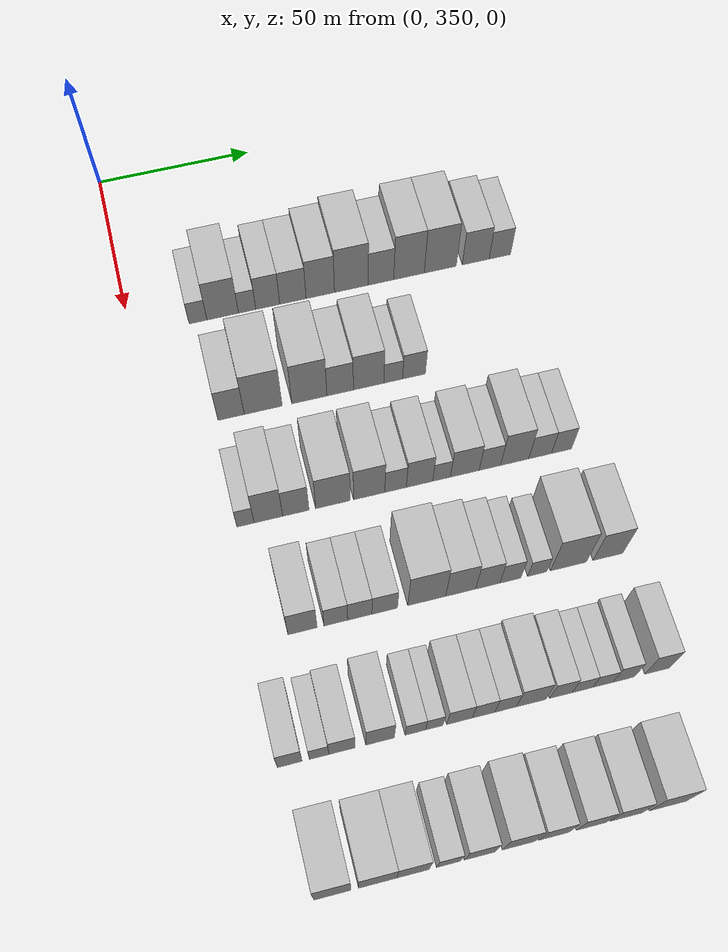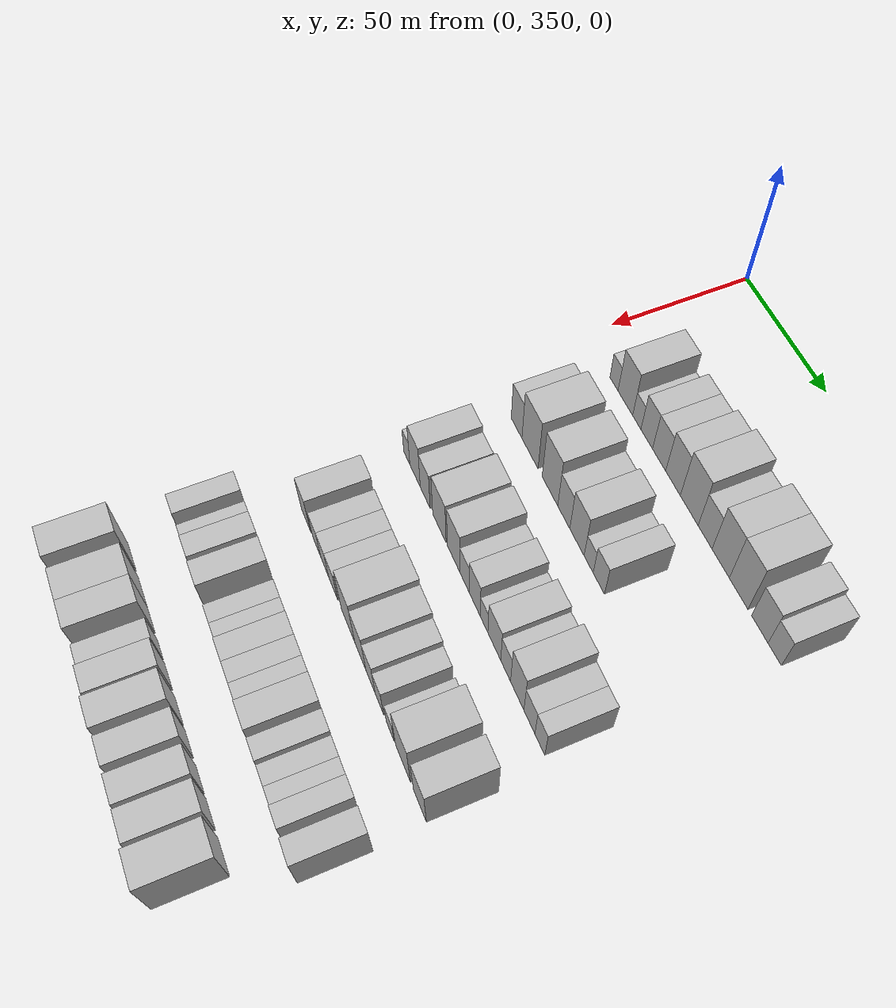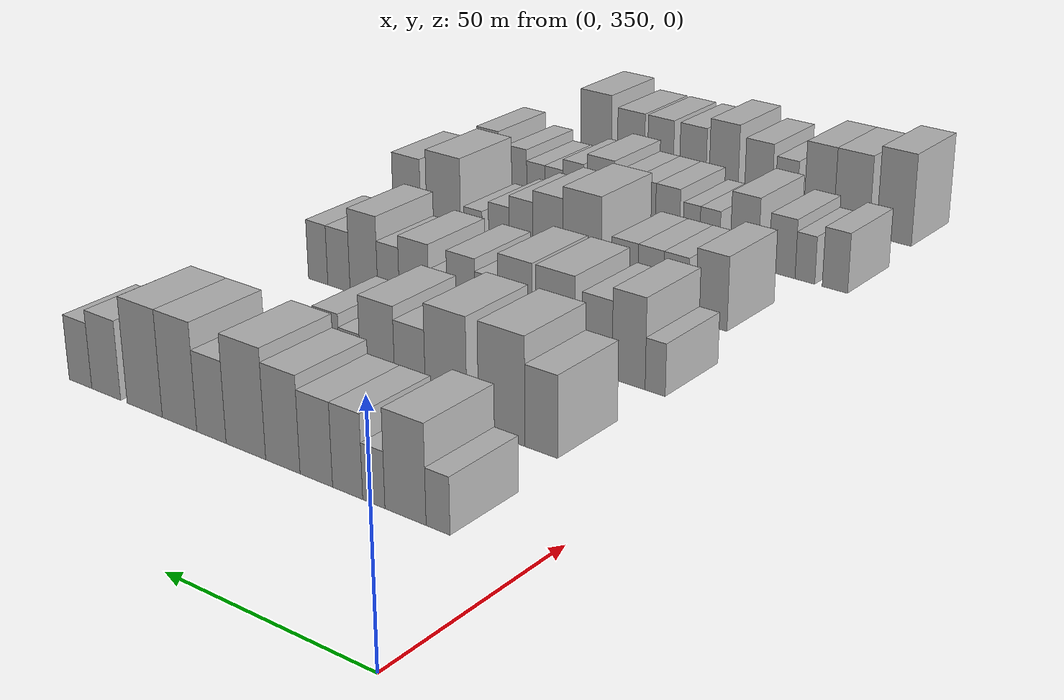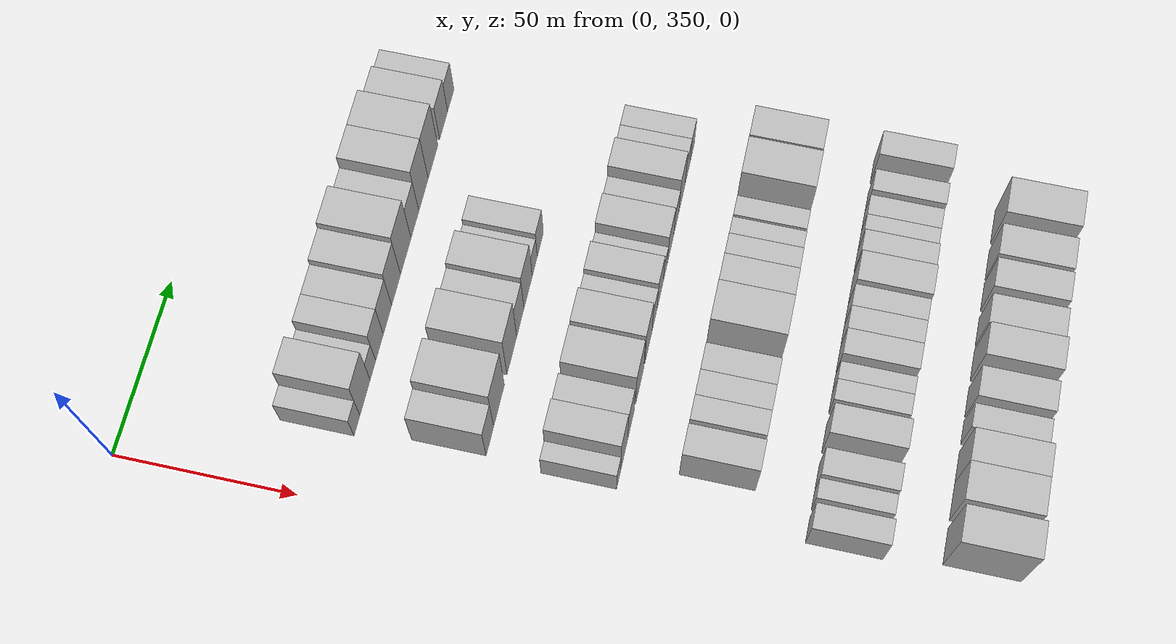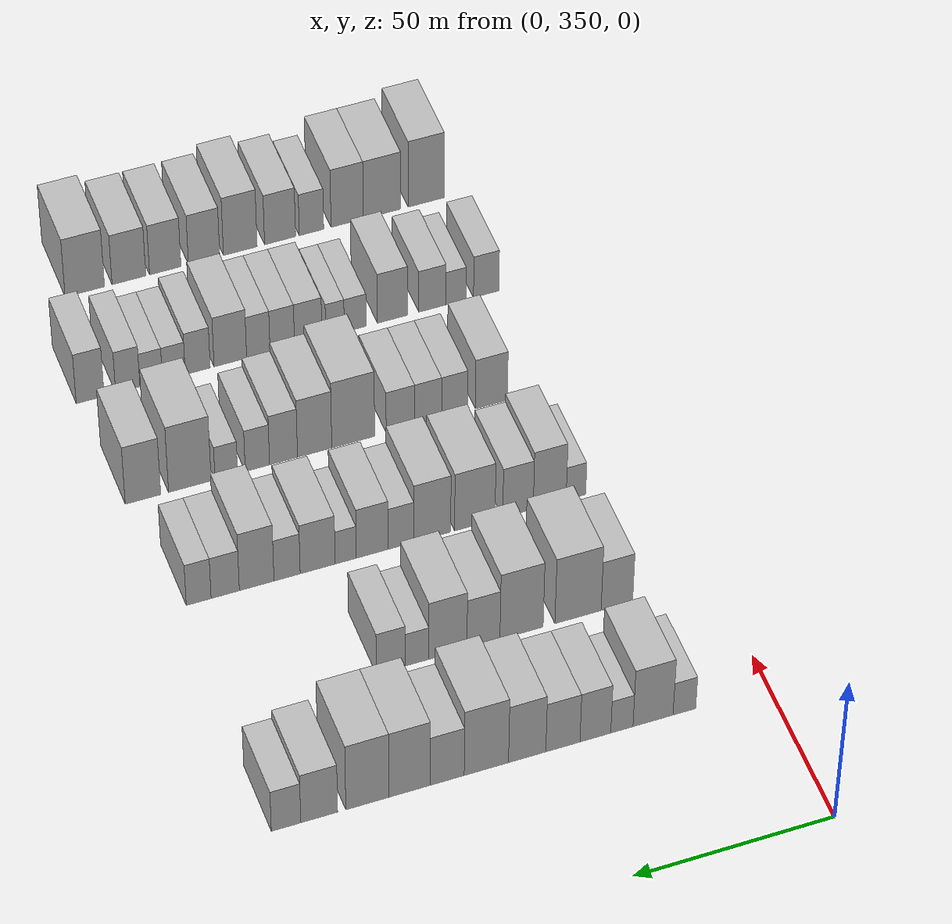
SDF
<sdf version="1.6">
 <world name="default">
  <model name="building_110">
   <static>1</static>
   <pose>50.0000 371.4552 0 0.000000 0.000000 0.000000</pose>
   <link name="link">
    <pose>0 0 6.00 0 0 0</pose>
    <collision name="collision"><geometry><box><size>20.0000 5.7170 12.0000</size></box></geometry></collision>
    <visual name="visual">
     <cast_shadows>0</cast_shadows>
     <geometry><box><size>20.0000 5.7170 12.0000</size></box></geometry>
     <material>
      <script>
       <uri>model://HANNAS_wall/materials/scripts</uri>
       <uri>model://HANNAS_wall/materials/textures</uri>
       <name>vrc/HANNAS_wall</name>
      </script>
     </material>
    </visual>
   </link>
  </model>
  <model name="building_111">
   <static>1</static>
   <pose>50.0000 379.3548 0 0.000000 0.000000 0.000000</pose>
   <link name="link">
    <pose>0 0 10.50 0 0 0</pose>
    <collision name="collision"><geometry><box><size>20.0000 10.0823 21.0000</size></box></geometry></collision>
    <visual name="visual">
     <cast_shadows>0</cast_shadows>
     <geometry><box><size>20.0000 10.0823 21.0000</size></box></geometry>
     <material>
      <script>
       <uri>model://HANNAS_wall/materials/scripts</uri>
       <uri>model://HANNAS_wall/materials/textures</uri>
       <name>vrc/HANNAS_wall</name>
      </script>
     </material>
    </visual>
   </link>
  </model>
  <model name="building_112">
   <static>1</static>
   <pose>50.0000 387.1852 0 0.000000 0.000000 0.000000</pose>
   <link name="link">
    <pose>0 0 6.00 0 0 0</pose>
    <collision name="collision"><geometry><box><size>20.0000 5.5784 12.0000</size></box></geometry></collision>
    <visual name="visual">
     <cast_shadows>0</cast_shadows>
     <geometry><box><size>20.0000 5.5784 12.0000</size></box></geometry>
     <material>
      <script>
       <uri>model://HANNAS_wall/materials/scripts</uri>
       <uri>model://HANNAS_wall/materials/textures</uri>
       <name>vrc/HANNAS_wall</name>
      </script>
     </material>
    </visual>
   </link>
  </model>
  <model name="building_113">
   <static>1</static>
   <pose>50.0000 393.8308 0 0.000000 0.000000 0.000000</pose>
   <link name="link">
    <pose>0 0 9.00 0 0 0</pose>
    <collision name="collision"><geometry><box><size>20.0000 7.7129 18.0000</size></box></geometry></collision>
    <visual name="visual">
     <cast_shadows>0</cast_shadows>
     <geometry><box><size>20.0000 7.7129 18.0000</size></box></geometry>
     <material>
      <script>
       <uri>model://HANNAS_wall/materials/scripts</uri>
       <uri>model://HANNAS_wall/materials/textures</uri>
       <name>vrc/HANNAS_wall</name>
      </script>
     </material>
    </visual>
   </link>
  </model>
  <model name="building_114">
   <static>1</static>
   <pose>50.0000 401.9539 0 0.000000 0.000000 0.000000</pose>
   <link name="link">
    <pose>0 0 9.00 0 0 0</pose>
    <collision name="collision"><geometry><box><size>20.0000 8.5334 18.0000</size></box></geometry></collision>
    <visual name="visual">
     <cast_shadows>0</cast_shadows>
     <geometry><box><size>20.0000 8.5334 18.0000</size></box></geometry>
     <material>
      <script>
       <uri>model://HANNAS_wall/materials/scripts</uri>
       <uri>model://HANNAS_wall/materials/textures</uri>
       <name>vrc/HANNAS_wall</name>
      </script>
     </material>
    </visual>
   </link>
  </model>
  <model name="building_115">
   <static>1</static>
   <pose>50.0000 410.8583 0 0.000000 0.000000 0.000000</pose>
   <link name="link">
    <pose>0 0 10.50 0 0 0</pose>
    <collision name="collision"><geometry><box><size>20.0000 9.2754 21.0000</size></box></geometry></collision>
    <visual name="visual">
     <cast_shadows>0</cast_shadows>
     <geometry><box><size>20.0000 9.2754 21.0000</size></box></geometry>
     <material>
      <script>
       <uri>model://HANNAS_wall/materials/scripts</uri>
       <uri>model://HANNAS_wall/materials/textures</uri>
       <name>vrc/HANNAS_wall</name>
      </script>
     </material>
    </visual>
   </link>
  </model>
  <model name="building_116">
   <static>1</static>
   <pose>50.0000 420.9840 0 0.000000 0.000000 0.000000</pose>
   <link name="link">
    <pose>0 0 12.00 0 0 0</pose>
    <collision name="collision"><geometry><box><size>20.0000 10.9758 24.0000</size></box></geometry></collision>
    <visual name="visual">
     <cast_shadows>0</cast_shadows>
     <geometry><box><size>20.0000 10.9758 24.0000</size></box></geometry>
     <material>
      <script>
       <uri>model://HANNAS_wall/materials/scripts</uri>
       <uri>model://HANNAS_wall/materials/textures</uri>
       <name>vrc/HANNAS_wall</name>
      </script>
     </material>
    </visual>
   </link>
  </model>
  <model name="building_117">
   <static>1</static>
   <pose>50.0000 430.6676 0 0.000000 0.000000 0.000000</pose>
   <link name="link">
    <pose>0 0 9.00 0 0 0</pose>
    <collision name="collision"><geometry><box><size>20.0000 8.3914 18.0000</size></box></geometry></collision>
    <visual name="visual">
     <cast_shadows>0</cast_shadows>
     <geometry><box><size>20.0000 8.3914 18.0000</size></box></geometry>
     <material>
      <script>
       <uri>model://HANNAS_wall/materials/scripts</uri>
       <uri>model://HANNAS_wall/materials/textures</uri>
       <name>vrc/HANNAS_wall</name>
      </script>
     </material>
    </visual>
   </link>
  </model>
  <model name="building_118">
   <static>1</static>
   <pose>50.0000 439.9173 0 0.000000 0.000000 0.000000</pose>
   <link name="link">
    <pose>0 0 12.00 0 0 0</pose>
    <collision name="collision"><geometry><box><size>20.0000 10.1082 24.0000</size></box></geometry></collision>
    <visual name="visual">
     <cast_shadows>0</cast_shadows>
     <geometry><box><size>20.0000 10.1082 24.0000</size></box></geometry>
     <material>
      <script>
       <uri>model://HANNAS_wall/materials/scripts</uri>
       <uri>model://HANNAS_wall/materials/textures</uri>
       <name>vrc/HANNAS_wall</name>
      </script>
     </material>
    </visual>
   </link>
  </model>
  <model name="building_119">
   <static>1</static>
   <pose>50.0000 450.2829 0 0.000000 0.000000 0.000000</pose>
   <link name="link">
    <pose>0 0 12.00 0 0 0</pose>
    <collision name="collision"><geometry><box><size>20.0000 10.6229 24.0000</size></box></geometry></collision>
    <visual name="visual">
     <cast_shadows>0</cast_shadows>
     <geometry><box><size>20.0000 10.6229 24.0000</size></box></geometry>
     <material>
      <script>
       <uri>model://HANNAS_wall/materials/scripts</uri>
       <uri>model://HANNAS_wall/materials/textures</uri>
       <name>vrc/HANNAS_wall</name>
      </script>
     </material>
    </visual>
   </link>
  </model>
  <model name="building_120">
   <static>1</static>
   <pose>50.0000 462.0882 0 0.000000 0.000000 0.000000</pose>
   <link name="link">
    <pose>0 0 9.00 0 0 0</pose>
    <collision name="collision"><geometry><box><size>20.0000 8.9876 18.0000</size></box></geometry></collision>
    <visual name="visual">
     <cast_shadows>0</cast_shadows>
     <geometry><box><size>20.0000 8.9876 18.0000</size></box></geometry>
     <material>
      <script>
       <uri>model://HANNAS_wall/materials/scripts</uri>
       <uri>model://HANNAS_wall/materials/textures</uri>
       <name>vrc/HANNAS_wall</name>
      </script>
     </material>
    </visual>
   </link>
  </model>
  <model name="building_121">
   <static>1</static>
   <pose>50.0000 470.1704 0 0.000000 0.000000 0.000000</pose>
   <link name="link">
    <pose>0 0 7.50 0 0 0</pose>
    <collision name="collision"><geometry><box><size>20.0000 7.1768 15.0000</size></box></geometry></collision>
    <visual name="visual">
     <cast_shadows>0</cast_shadows>
     <geometry><box><size>20.0000 7.1768 15.0000</size></box></geometry>
     <material>
      <script>
       <uri>model://HANNAS_wall/materials/scripts</uri>
       <uri>model://HANNAS_wall/materials/textures</uri>
       <name>vrc/HANNAS_wall</name>
      </script>
     </material>
    </visual>
   </link>
  </model>
  <model name="building_242">
   <static>1</static>
   <pose>85.0000 374.8270 0 0.000000 0.000000 0.000000</pose>
   <link name="link">
    <pose>0 0 9.00 0 0 0</pose>
    <collision name="collision"><geometry><box><size>20.0000 8.0804 18.0000</size></box></geometry></collision>
    <visual name="visual">
     <cast_shadows>0</cast_shadows>
     <geometry><box><size>20.0000 8.0804 18.0000</size></box></geometry>
     <material>
      <script>
       <uri>model://HANNAS_wall/materials/scripts</uri>
       <uri>model://HANNAS_wall/materials/textures</uri>
       <name>vrc/HANNAS_wall</name>
      </script>
     </material>
    </visual>
   </link>
  </model>
  <model name="building_243">
   <static>1</static>
   <pose>85.0000 384.7584 0 0.000000 0.000000 0.000000</pose>
   <link name="link">
    <pose>0 0 12.00 0 0 0</pose>
    <collision name="collision"><geometry><box><size>20.0000 11.7825 24.0000</size></box></geometry></collision>
    <visual name="visual">
     <cast_shadows>0</cast_shadows>
     <geometry><box><size>20.0000 11.7825 24.0000</size></box></geometry>
     <material>
      <script>
       <uri>model://HANNAS_wall/materials/scripts</uri>
       <uri>model://HANNAS_wall/materials/textures</uri>
       <name>vrc/HANNAS_wall</name>
      </script>
     </material>
    </visual>
   </link>
  </model>
  <model name="building_244">
   <static>1</static>
   <pose>85.0000 399.1333 0 0.000000 0.000000 0.000000</pose>
   <link name="link">
    <pose>0 0 12.00 0 0 0</pose>
    <collision name="collision"><geometry><box><size>20.0000 10.9673 24.0000</size></box></geometry></collision>
    <visual name="visual">
     <cast_shadows>0</cast_shadows>
     <geometry><box><size>20.0000 10.9673 24.0000</size></box></geometry>
     <material>
      <script>
       <uri>model://HANNAS_wall/materials/scripts</uri>
       <uri>model://HANNAS_wall/materials/textures</uri>
       <name>vrc/HANNAS_wall</name>
      </script>
     </material>
    </visual>
   </link>
  </model>
  <model name="building_245">
   <static>1</static>
   <pose>85.0000 408.7823 0 0.000000 0.000000 0.000000</pose>
   <link name="link">
    <pose>0 0 9.00 0 0 0</pose>
    <collision name="collision"><geometry><box><size>20.0000 8.3306 18.0000</size></box></geometry></collision>
    <visual name="visual">
     <cast_shadows>0</cast_shadows>
     <geometry><box><size>20.0000 8.3306 18.0000</size></box></geometry>
     <material>
      <script>
       <uri>model://HANNAS_wall/materials/scripts</uri>
       <uri>model://HANNAS_wall/materials/textures</uri>
       <name>vrc/HANNAS_wall</name>
      </script>
     </material>
    </visual>
   </link>
  </model>
  <model name="building_246">
   <static>1</static>
   <pose>85.0000 417.7440 0 0.000000 0.000000 0.000000</pose>
   <link name="link">
    <pose>0 0 10.50 0 0 0</pose>
    <collision name="collision"><geometry><box><size>20.0000 9.5926 21.0000</size></box></geometry></collision>
    <visual name="visual">
     <cast_shadows>0</cast_shadows>
     <geometry><box><size>20.0000 9.5926 21.0000</size></box></geometry>
     <material>
      <script>
       <uri>model://HANNAS_wall/materials/scripts</uri>
       <uri>model://HANNAS_wall/materials/textures</uri>
       <name>vrc/HANNAS_wall</name>
      </script>
     </material>
    </visual>
   </link>
  </model>
  <model name="building_247">
   <static>1</static>
   <pose>85.0000 425.5136 0 0.000000 0.000000 0.000000</pose>
   <link name="link">
    <pose>0 0 6.00 0 0 0</pose>
    <collision name="collision"><geometry><box><size>20.0000 5.9467 12.0000</size></box></geometry></collision>
    <visual name="visual">
     <cast_shadows>0</cast_shadows>
     <geometry><box><size>20.0000 5.9467 12.0000</size></box></geometry>
     <material>
      <script>
       <uri>model://HANNAS_wall/materials/scripts</uri>
       <uri>model://HANNAS_wall/materials/textures</uri>
       <name>vrc/HANNAS_wall</name>
      </script>
     </material>
    </visual>
   </link>
  </model>
  <model name="building_248">
   <static>1</static>
   <pose>85.0000 432.1170 0 0.000000 0.000000 0.000000</pose>
   <link name="link">
    <pose>0 0 7.50 0 0 0</pose>
    <collision name="collision"><geometry><box><size>20.0000 7.2601 15.0000</size></box></geometry></collision>
    <visual name="visual">
     <cast_shadows>0</cast_shadows>
     <geometry><box><size>20.0000 7.2601 15.0000</size></box></geometry>
     <material>
      <script>
       <uri>model://HANNAS_wall/materials/scripts</uri>
       <uri>model://HANNAS_wall/materials/textures</uri>
       <name>vrc/HANNAS_wall</name>
      </script>
     </material>
    </visual>
   </link>
  </model>
  <model name="building_348">
   <static>1</static>
   <pose>120.0000 371.8962 0 0.000000 0.000000 0.000000</pose>
   <link name="link">
    <pose>0 0 6.00 0 0 0</pose>
    <collision name="collision"><geometry><box><size>20.0000 5.0965 12.0000</size></box></geometry></collision>
    <visual name="visual">
     <cast_shadows>0</cast_shadows>
     <geometry><box><size>20.0000 5.0965 12.0000</size></box></geometry>
     <material>
      <script>
       <uri>model://HANNAS_wall/materials/scripts</uri>
       <uri>model://HANNAS_wall/materials/textures</uri>
       <name>vrc/HANNAS_wall</name>
      </script>
     </material>
    </visual>
   </link>
  </model>
  <model name="building_349">
   <static>1</static>
   <pose>120.0000 378.7109 0 0.000000 0.000000 0.000000</pose>
   <link name="link">
    <pose>0 0 10.50 0 0 0</pose>
    <collision name="collision"><geometry><box><size>20.0000 8.5330 21.0000</size></box></geometry></collision>
    <visual name="visual">
     <cast_shadows>0</cast_shadows>
     <geometry><box><size>20.0000 8.5330 21.0000</size></box></geometry>
     <material>
      <script>
       <uri>model://HANNAS_wall/materials/scripts</uri>
       <uri>model://HANNAS_wall/materials/textures</uri>
       <name>vrc/HANNAS_wall</name>
      </script>
     </material>
    </visual>
   </link>
  </model>
  <model name="building_350">
   <static>1</static>
   <pose>120.0000 386.9313 0 0.000000 0.000000 0.000000</pose>
   <link name="link">
    <pose>0 0 9.00 0 0 0</pose>
    <collision name="collision"><geometry><box><size>20.0000 7.9079 18.0000</size></box></geometry></collision>
    <visual name="visual">
     <cast_shadows>0</cast_shadows>
     <geometry><box><size>20.0000 7.9079 18.0000</size></box></geometry>
     <material>
      <script>
       <uri>model://HANNAS_wall/materials/scripts</uri>
       <uri>model://HANNAS_wall/materials/textures</uri>
       <name>vrc/HANNAS_wall</name>
      </script>
     </material>
    </visual>
   </link>
  </model>
  <model name="building_351">
   <static>1</static>
   <pose>120.0000 398.0924 0 0.000000 0.000000 0.000000</pose>
   <link name="link">
    <pose>0 0 10.50 0 0 0</pose>
    <collision name="collision"><geometry><box><size>20.0000 10.4142 21.0000</size></box></geometry></collision>
    <visual name="visual">
     <cast_shadows>0</cast_shadows>
     <geometry><box><size>20.0000 10.4142 21.0000</size></box></geometry>
     <material>
      <script>
       <uri>model://HANNAS_wall/materials/scripts</uri>
       <uri>model://HANNAS_wall/materials/textures</uri>
       <name>vrc/HANNAS_wall</name>
      </script>
     </material>
    </visual>
   </link>
  </model>
  <model name="building_352">
   <static>1</static>
   <pose>120.0000 409.0342 0 0.000000 0.000000 0.000000</pose>
   <link name="link">
    <pose>0 0 10.50 0 0 0</pose>
    <collision name="collision"><geometry><box><size>20.0000 9.4694 21.0000</size></box></geometry></collision>
    <visual name="visual">
     <cast_shadows>0</cast_shadows>
     <geometry><box><size>20.0000 9.4694 21.0000</size></box></geometry>
     <material>
      <script>
       <uri>model://HANNAS_wall/materials/scripts</uri>
       <uri>model://HANNAS_wall/materials/textures</uri>
       <name>vrc/HANNAS_wall</name>
      </script>
     </material>
    </visual>
   </link>
  </model>
  <model name="building_353">
   <static>1</static>
   <pose>120.0000 417.0589 0 0.000000 0.000000 0.000000</pose>
   <link name="link">
    <pose>0 0 7.50 0 0 0</pose>
    <collision name="collision"><geometry><box><size>20.0000 6.5801 15.0000</size></box></geometry></collision>
    <visual name="visual">
     <cast_shadows>0</cast_shadows>
     <geometry><box><size>20.0000 6.5801 15.0000</size></box></geometry>
     <material>
      <script>
       <uri>model://HANNAS_wall/materials/scripts</uri>
       <uri>model://HANNAS_wall/materials/textures</uri>
       <name>vrc/HANNAS_wall</name>
      </script>
     </material>
    </visual>
   </link>
  </model>
  <model name="building_354">
   <static>1</static>
   <pose>120.0000 424.4095 0 0.000000 0.000000 0.000000</pose>
   <link name="link">
    <pose>0 0 9.00 0 0 0</pose>
    <collision name="collision"><geometry><box><size>20.0000 8.1209 18.0000</size></box></geometry></collision>
    <visual name="visual">
     <cast_shadows>0</cast_shadows>
     <geometry><box><size>20.0000 8.1209 18.0000</size></box></geometry>
     <material>
      <script>
       <uri>model://HANNAS_wall/materials/scripts</uri>
       <uri>model://HANNAS_wall/materials/textures</uri>
       <name>vrc/HANNAS_wall</name>
      </script>
     </material>
    </visual>
   </link>
  </model>
  <model name="building_355">
   <static>1</static>
   <pose>120.0000 431.1703 0 0.000000 0.000000 0.000000</pose>
   <link name="link">
    <pose>0 0 6.00 0 0 0</pose>
    <collision name="collision"><geometry><box><size>20.0000 5.4007 12.0000</size></box></geometry></collision>
    <visual name="visual">
     <cast_shadows>0</cast_shadows>
     <geometry><box><size>20.0000 5.4007 12.0000</size></box></geometry>
     <material>
      <script>
       <uri>model://HANNAS_wall/materials/scripts</uri>
       <uri>model://HANNAS_wall/materials/textures</uri>
       <name>vrc/HANNAS_wall</name>
      </script>
     </material>
    </visual>
   </link>
  </model>
  <model name="building_356">
   <static>1</static>
   <pose>120.0000 438.3139 0 0.000000 0.000000 0.000000</pose>
   <link name="link">
    <pose>0 0 9.00 0 0 0</pose>
    <collision name="collision"><geometry><box><size>20.0000 8.8864 18.0000</size></box></geometry></collision>
    <visual name="visual">
     <cast_shadows>0</cast_shadows>
     <geometry><box><size>20.0000 8.8864 18.0000</size></box></geometry>
     <material>
      <script>
       <uri>model://HANNAS_wall/materials/scripts</uri>
       <uri>model://HANNAS_wall/materials/textures</uri>
       <name>vrc/HANNAS_wall</name>
      </script>
     </material>
    </visual>
   </link>
  </model>
  <model name="building_357">
   <static>1</static>
   <pose>120.0000 446.0766 0 0.000000 0.000000 0.000000</pose>
   <link name="link">
    <pose>0 0 7.50 0 0 0</pose>
    <collision name="collision"><geometry><box><size>20.0000 6.6391 15.0000</size></box></geometry></collision>
    <visual name="visual">
     <cast_shadows>0</cast_shadows>
     <geometry><box><size>20.0000 6.6391 15.0000</size></box></geometry>
     <material>
      <script>
       <uri>model://HANNAS_wall/materials/scripts</uri>
       <uri>model://HANNAS_wall/materials/textures</uri>
       <name>vrc/HANNAS_wall</name>
      </script>
     </material>
    </visual>
   </link>
  </model>
  <model name="building_358">
   <static>1</static>
   <pose>120.0000 453.7754 0 0.000000 0.000000 0.000000</pose>
   <link name="link">
    <pose>0 0 10.50 0 0 0</pose>
    <collision name="collision"><geometry><box><size>20.0000 8.7584 21.0000</size></box></geometry></collision>
    <visual name="visual">
     <cast_shadows>0</cast_shadows>
     <geometry><box><size>20.0000 8.7584 21.0000</size></box></geometry>
     <material>
      <script>
       <uri>model://HANNAS_wall/materials/scripts</uri>
       <uri>model://HANNAS_wall/materials/textures</uri>
       <name>vrc/HANNAS_wall</name>
      </script>
     </material>
    </visual>
   </link>
  </model>
  <model name="building_359">
   <static>1</static>
   <pose>120.0000 461.7132 0 0.000000 0.000000 0.000000</pose>
   <link name="link">
    <pose>0 0 7.50 0 0 0</pose>
    <collision name="collision"><geometry><box><size>20.0000 7.1172 15.0000</size></box></geometry></collision>
    <visual name="visual">
     <cast_shadows>0</cast_shadows>
     <geometry><box><size>20.0000 7.1172 15.0000</size></box></geometry>
     <material>
      <script>
       <uri>model://HANNAS_wall/materials/scripts</uri>
       <uri>model://HANNAS_wall/materials/textures</uri>
       <name>vrc/HANNAS_wall</name>
      </script>
     </material>
    </visual>
   </link>
  </model>
  <model name="building_360">
   <static>1</static>
   <pose>120.0000 468.3974 0 0.000000 0.000000 0.000000</pose>
   <link name="link">
    <pose>0 0 7.50 0 0 0</pose>
    <collision name="collision"><geometry><box><size>20.0000 6.2514 15.0000</size></box></geometry></collision>
    <visual name="visual">
     <cast_shadows>0</cast_shadows>
     <geometry><box><size>20.0000 6.2514 15.0000</size></box></geometry>
     <material>
      <script>
       <uri>model://HANNAS_wall/materials/scripts</uri>
       <uri>model://HANNAS_wall/materials/textures</uri>
       <name>vrc/HANNAS_wall</name>
      </script>
     </material>
    </visual>
   </link>
  </model>
  <model name="building_470">
   <static>1</static>
   <pose>155.0000 380.8708 0 0.000000 0.000000 0.000000</pose>
   <link name="link">
    <pose>0 0 9.00 0 0 0</pose>
    <collision name="collision"><geometry><box><size>20.0000 8.4128 18.0000</size></box></geometry></collision>
    <visual name="visual">
     <cast_shadows>0</cast_shadows>
     <geometry><box><size>20.0000 8.4128 18.0000</size></box></geometry>
     <material>
      <script>
       <uri>model://HANNAS_wall/materials/scripts</uri>
       <uri>model://HANNAS_wall/materials/textures</uri>
       <name>vrc/HANNAS_wall</name>
      </script>
     </material>
    </visual>
   </link>
  </model>
  <model name="building_471">
   <static>1</static>
   <pose>155.0000 390.5074 0 0.000000 0.000000 0.000000</pose>
   <link name="link">
    <pose>0 0 7.50 0 0 0</pose>
    <collision name="collision"><geometry><box><size>20.0000 6.8602 15.0000</size></box></geometry></collision>
    <visual name="visual">
     <cast_shadows>0</cast_shadows>
     <geometry><box><size>20.0000 6.8602 15.0000</size></box></geometry>
     <material>
      <script>
       <uri>model://HANNAS_wall/materials/scripts</uri>
       <uri>model://HANNAS_wall/materials/textures</uri>
       <name>vrc/HANNAS_wall</name>
      </script>
     </material>
    </visual>
   </link>
  </model>
  <model name="building_472">
   <static>1</static>
   <pose>155.0000 397.4467 0 0.000000 0.000000 0.000000</pose>
   <link name="link">
    <pose>0 0 7.50 0 0 0</pose>
    <collision name="collision"><geometry><box><size>20.0000 7.0185 15.0000</size></box></geometry></collision>
    <visual name="visual">
     <cast_shadows>0</cast_shadows>
     <geometry><box><size>20.0000 7.0185 15.0000</size></box></geometry>
     <material>
      <script>
       <uri>model://HANNAS_wall/materials/scripts</uri>
       <uri>model://HANNAS_wall/materials/textures</uri>
       <name>vrc/HANNAS_wall</name>
      </script>
     </material>
    </visual>
   </link>
  </model>
  <model name="building_473">
   <static>1</static>
   <pose>155.0000 404.6914 0 0.000000 0.000000 0.000000</pose>
   <link name="link">
    <pose>0 0 7.50 0 0 0</pose>
    <collision name="collision"><geometry><box><size>20.0000 7.4708 15.0000</size></box></geometry></collision>
    <visual name="visual">
     <cast_shadows>0</cast_shadows>
     <geometry><box><size>20.0000 7.4708 15.0000</size></box></geometry>
     <material>
      <script>
       <uri>model://HANNAS_wall/materials/scripts</uri>
       <uri>model://HANNAS_wall/materials/textures</uri>
       <name>vrc/HANNAS_wall</name>
      </script>
     </material>
    </visual>
   </link>
  </model>
  <model name="building_474">
   <static>1</static>
   <pose>155.0000 417.0039 0 0.000000 0.000000 0.000000</pose>
   <link name="link">
    <pose>0 0 12.00 0 0 0</pose>
    <collision name="collision"><geometry><box><size>20.0000 11.1544 24.0000</size></box></geometry></collision>
    <visual name="visual">
     <cast_shadows>0</cast_shadows>
     <geometry><box><size>20.0000 11.1544 24.0000</size></box></geometry>
     <material>
      <script>
       <uri>model://HANNAS_wall/materials/scripts</uri>
       <uri>model://HANNAS_wall/materials/textures</uri>
       <name>vrc/HANNAS_wall</name>
      </script>
     </material>
    </visual>
   </link>
  </model>
  <model name="building_475">
   <static>1</static>
   <pose>155.0000 427.0225 0 0.000000 0.000000 0.000000</pose>
   <link name="link">
    <pose>0 0 10.50 0 0 0</pose>
    <collision name="collision"><geometry><box><size>20.0000 8.8828 21.0000</size></box></geometry></collision>
    <visual name="visual">
     <cast_shadows>0</cast_shadows>
     <geometry><box><size>20.0000 8.8828 21.0000</size></box></geometry>
     <material>
      <script>
       <uri>model://HANNAS_wall/materials/scripts</uri>
       <uri>model://HANNAS_wall/materials/textures</uri>
       <name>vrc/HANNAS_wall</name>
      </script>
     </material>
    </visual>
   </link>
  </model>
  <model name="building_476">
   <static>1</static>
   <pose>155.0000 435.0719 0 0.000000 0.000000 0.000000</pose>
   <link name="link">
    <pose>0 0 9.00 0 0 0</pose>
    <collision name="collision"><geometry><box><size>20.0000 7.2161 18.0000</size></box></geometry></collision>
    <visual name="visual">
     <cast_shadows>0</cast_shadows>
     <geometry><box><size>20.0000 7.2161 18.0000</size></box></geometry>
     <material>
      <script>
       <uri>model://HANNAS_wall/materials/scripts</uri>
       <uri>model://HANNAS_wall/materials/textures</uri>
       <name>vrc/HANNAS_wall</name>
      </script>
     </material>
    </visual>
   </link>
  </model>
  <model name="building_477">
   <static>1</static>
   <pose>155.0000 441.8192 0 0.000000 0.000000 0.000000</pose>
   <link name="link">
    <pose>0 0 7.50 0 0 0</pose>
    <collision name="collision"><geometry><box><size>20.0000 6.2783 15.0000</size></box></geometry></collision>
    <visual name="visual">
     <cast_shadows>0</cast_shadows>
     <geometry><box><size>20.0000 6.2783 15.0000</size></box></geometry>
     <material>
      <script>
       <uri>model://HANNAS_wall/materials/scripts</uri>
       <uri>model://HANNAS_wall/materials/textures</uri>
       <name>vrc/HANNAS_wall</name>
      </script>
     </material>
    </visual>
   </link>
  </model>
  <model name="building_478">
   <static>1</static>
   <pose>155.0000 449.8513 0 0.000000 0.000000 0.000000</pose>
   <link name="link">
    <pose>0 0 6.00 0 0 0</pose>
    <collision name="collision"><geometry><box><size>20.0000 5.7859 12.0000</size></box></geometry></collision>
    <visual name="visual">
     <cast_shadows>0</cast_shadows>
     <geometry><box><size>20.0000 5.7859 12.0000</size></box></geometry>
     <material>
      <script>
       <uri>model://HANNAS_wall/materials/scripts</uri>
       <uri>model://HANNAS_wall/materials/textures</uri>
       <name>vrc/HANNAS_wall</name>
      </script>
     </material>
    </visual>
   </link>
  </model>
  <model name="building_479">
   <static>1</static>
   <pose>155.0000 459.1944 0 0.000000 0.000000 0.000000</pose>
   <link name="link">
    <pose>0 0 12.00 0 0 0</pose>
    <collision name="collision"><geometry><box><size>20.0000 10.9003 24.0000</size></box></geometry></collision>
    <visual name="visual">
     <cast_shadows>0</cast_shadows>
     <geometry><box><size>20.0000 10.9003 24.0000</size></box></geometry>
     <material>
      <script>
       <uri>model://HANNAS_wall/materials/scripts</uri>
       <uri>model://HANNAS_wall/materials/textures</uri>
       <name>vrc/HANNAS_wall</name>
      </script>
     </material>
    </visual>
   </link>
  </model>
  <model name="building_480">
   <static>1</static>
   <pose>155.0000 471.1728 0 0.000000 0.000000 0.000000</pose>
   <link name="link">
    <pose>0 0 10.50 0 0 0</pose>
    <collision name="collision"><geometry><box><size>20.0000 9.0564 21.0000</size></box></geometry></collision>
    <visual name="visual">
     <cast_shadows>0</cast_shadows>
     <geometry><box><size>20.0000 9.0564 21.0000</size></box></geometry>
     <material>
      <script>
       <uri>model://HANNAS_wall/materials/scripts</uri>
       <uri>model://HANNAS_wall/materials/textures</uri>
       <name>vrc/HANNAS_wall</name>
      </script>
     </material>
    </visual>
   </link>
  </model>
  <model name="building_591">
   <static>1</static>
   <pose>190.0000 369.2871 0 0.000000 0.000000 0.000000</pose>
   <link name="link">
    <pose>0 0 7.50 0 0 0</pose>
    <collision name="collision"><geometry><box><size>20.0000 6.7829 15.0000</size></box></geometry></collision>
    <visual name="visual">
     <cast_shadows>0</cast_shadows>
     <geometry><box><size>20.0000 6.7829 15.0000</size></box></geometry>
     <material>
      <script>
       <uri>model://HANNAS_wall/materials/scripts</uri>
       <uri>model://HANNAS_wall/materials/textures</uri>
       <name>vrc/HANNAS_wall</name>
      </script>
     </material>
    </visual>
   </link>
  </model>
  <model name="building_592">
   <static>1</static>
   <pose>190.0000 377.3660 0 0.000000 0.000000 0.000000</pose>
   <link name="link">
    <pose>0 0 6.00 0 0 0</pose>
    <collision name="collision"><geometry><box><size>20.0000 5.3750 12.0000</size></box></geometry></collision>
    <visual name="visual">
     <cast_shadows>0</cast_shadows>
     <geometry><box><size>20.0000 5.3750 12.0000</size></box></geometry>
     <material>
      <script>
       <uri>model://HANNAS_wall/materials/scripts</uri>
       <uri>model://HANNAS_wall/materials/textures</uri>
       <name>vrc/HANNAS_wall</name>
      </script>
     </material>
    </visual>
   </link>
  </model>
  <model name="building_593">
   <static>1</static>
   <pose>190.0000 383.6930 0 0.000000 0.000000 0.000000</pose>
   <link name="link">
    <pose>0 0 7.50 0 0 0</pose>
    <collision name="collision"><geometry><box><size>20.0000 7.2790 15.0000</size></box></geometry></collision>
    <visual name="visual">
     <cast_shadows>0</cast_shadows>
     <geometry><box><size>20.0000 7.2790 15.0000</size></box></geometry>
     <material>
      <script>
       <uri>model://HANNAS_wall/materials/scripts</uri>
       <uri>model://HANNAS_wall/materials/textures</uri>
       <name>vrc/HANNAS_wall</name>
      </script>
     </material>
    </visual>
   </link>
  </model>
  <model name="building_594">
   <static>1</static>
   <pose>190.0000 394.3286 0 0.000000 0.000000 0.000000</pose>
   <link name="link">
    <pose>0 0 9.00 0 0 0</pose>
    <collision name="collision"><geometry><box><size>20.0000 7.9921 18.0000</size></box></geometry></collision>
    <visual name="visual">
     <cast_shadows>0</cast_shadows>
     <geometry><box><size>20.0000 7.9921 18.0000</size></box></geometry>
     <material>
      <script>
       <uri>model://HANNAS_wall/materials/scripts</uri>
       <uri>model://HANNAS_wall/materials/textures</uri>
       <name>vrc/HANNAS_wall</name>
      </script>
     </material>
    </visual>
   </link>
  </model>
  <model name="building_595">
   <static>1</static>
   <pose>190.0000 404.2279 0 0.000000 0.000000 0.000000</pose>
   <link name="link">
    <pose>0 0 6.00 0 0 0</pose>
    <collision name="collision"><geometry><box><size>20.0000 5.8065 12.0000</size></box></geometry></collision>
    <visual name="visual">
     <cast_shadows>0</cast_shadows>
     <geometry><box><size>20.0000 5.8065 12.0000</size></box></geometry>
     <material>
      <script>
       <uri>model://HANNAS_wall/materials/scripts</uri>
       <uri>model://HANNAS_wall/materials/textures</uri>
       <name>vrc/HANNAS_wall</name>
      </script>
     </material>
    </visual>
   </link>
  </model>
  <model name="building_596">
   <static>1</static>
   <pose>190.0000 409.5874 0 0.000000 0.000000 0.000000</pose>
   <link name="link">
    <pose>0 0 6.00 0 0 0</pose>
    <collision name="collision"><geometry><box><size>20.0000 4.9127 12.0000</size></box></geometry></collision>
    <visual name="visual">
     <cast_shadows>0</cast_shadows>
     <geometry><box><size>20.0000 4.9127 12.0000</size></box></geometry>
     <material>
      <script>
       <uri>model://HANNAS_wall/materials/scripts</uri>
       <uri>model://HANNAS_wall/materials/textures</uri>
       <name>vrc/HANNAS_wall</name>
      </script>
     </material>
    </visual>
   </link>
  </model>
  <model name="building_597">
   <static>1</static>
   <pose>190.0000 416.6694 0 0.000000 0.000000 0.000000</pose>
   <link name="link">
    <pose>0 0 7.50 0 0 0</pose>
    <collision name="collision"><geometry><box><size>20.0000 7.2513 15.0000</size></box></geometry></collision>
    <visual name="visual">
     <cast_shadows>0</cast_shadows>
     <geometry><box><size>20.0000 7.2513 15.0000</size></box></geometry>
     <material>
      <script>
       <uri>model://HANNAS_wall/materials/scripts</uri>
       <uri>model://HANNAS_wall/materials/textures</uri>
       <name>vrc/HANNAS_wall</name>
      </script>
     </material>
    </visual>
   </link>
  </model>
  <model name="building_598">
   <static>1</static>
   <pose>190.0000 423.5135 0 0.000000 0.000000 0.000000</pose>
   <link name="link">
    <pose>0 0 7.50 0 0 0</pose>
    <collision name="collision"><geometry><box><size>20.0000 6.4367 15.0000</size></box></geometry></collision>
    <visual name="visual">
     <cast_shadows>0</cast_shadows>
     <geometry><box><size>20.0000 6.4367 15.0000</size></box></geometry>
     <material>
      <script>
       <uri>model://HANNAS_wall/materials/scripts</uri>
       <uri>model://HANNAS_wall/materials/textures</uri>
       <name>vrc/HANNAS_wall</name>
      </script>
     </material>
    </visual>
   </link>
  </model>
  <model name="building_599">
   <static>1</static>
   <pose>190.0000 429.8102 0 0.000000 0.000000 0.000000</pose>
   <link name="link">
    <pose>0 0 7.50 0 0 0</pose>
    <collision name="collision"><geometry><box><size>20.0000 6.1567 15.0000</size></box></geometry></collision>
    <visual name="visual">
     <cast_shadows>0</cast_shadows>
     <geometry><box><size>20.0000 6.1567 15.0000</size></box></geometry>
     <material>
      <script>
       <uri>model://HANNAS_wall/materials/scripts</uri>
       <uri>model://HANNAS_wall/materials/textures</uri>
       <name>vrc/HANNAS_wall</name>
      </script>
     </material>
    </visual>
   </link>
  </model>
  <model name="building_600">
   <static>1</static>
   <pose>190.0000 437.1587 0 0.000000 0.000000 0.000000</pose>
   <link name="link">
    <pose>0 0 9.00 0 0 0</pose>
    <collision name="collision"><geometry><box><size>20.0000 8.5403 18.0000</size></box></geometry></collision>
    <visual name="visual">
     <cast_shadows>0</cast_shadows>
     <geometry><box><size>20.0000 8.5403 18.0000</size></box></geometry>
     <material>
      <script>
       <uri>model://HANNAS_wall/materials/scripts</uri>
       <uri>model://HANNAS_wall/materials/textures</uri>
       <name>vrc/HANNAS_wall</name>
      </script>
     </material>
    </visual>
   </link>
  </model>
  <model name="building_601">
   <static>1</static>
   <pose>190.0000 445.6929 0 0.000000 0.000000 0.000000</pose>
   <link name="link">
    <pose>0 0 7.50 0 0 0</pose>
    <collision name="collision"><geometry><box><size>20.0000 6.5282 15.0000</size></box></geometry></collision>
    <visual name="visual">
     <cast_shadows>0</cast_shadows>
     <geometry><box><size>20.0000 6.5282 15.0000</size></box></geometry>
     <material>
      <script>
       <uri>model://HANNAS_wall/materials/scripts</uri>
       <uri>model://HANNAS_wall/materials/textures</uri>
       <name>vrc/HANNAS_wall</name>
      </script>
     </material>
    </visual>
   </link>
  </model>
  <model name="building_602">
   <static>1</static>
   <pose>190.0000 451.9378 0 0.000000 0.000000 0.000000</pose>
   <link name="link">
    <pose>0 0 6.00 0 0 0</pose>
    <collision name="collision"><geometry><box><size>20.0000 5.9616 12.0000</size></box></geometry></collision>
    <visual name="visual">
     <cast_shadows>0</cast_shadows>
     <geometry><box><size>20.0000 5.9616 12.0000</size></box></geometry>
     <material>
      <script>
       <uri>model://HANNAS_wall/materials/scripts</uri>
       <uri>model://HANNAS_wall/materials/textures</uri>
       <name>vrc/HANNAS_wall</name>
      </script>
     </material>
    </visual>
   </link>
  </model>
  <model name="building_603">
   <static>1</static>
   <pose>190.0000 457.8471 0 0.000000 0.000000 0.000000</pose>
   <link name="link">
    <pose>0 0 6.00 0 0 0</pose>
    <collision name="collision"><geometry><box><size>20.0000 5.8570 12.0000</size></box></geometry></collision>
    <visual name="visual">
     <cast_shadows>0</cast_shadows>
     <geometry><box><size>20.0000 5.8570 12.0000</size></box></geometry>
     <material>
      <script>
       <uri>model://HANNAS_wall/materials/scripts</uri>
       <uri>model://HANNAS_wall/materials/textures</uri>
       <name>vrc/HANNAS_wall</name>
      </script>
     </material>
    </visual>
   </link>
  </model>
  <model name="building_604">
   <static>1</static>
   <pose>190.0000 463.9265 0 0.000000 0.000000 0.000000</pose>
   <link name="link">
    <pose>0 0 7.50 0 0 0</pose>
    <collision name="collision"><geometry><box><size>20.0000 6.3019 15.0000</size></box></geometry></collision>
    <visual name="visual">
     <cast_shadows>0</cast_shadows>
     <geometry><box><size>20.0000 6.3019 15.0000</size></box></geometry>
     <material>
      <script>
       <uri>model://HANNAS_wall/materials/scripts</uri>
       <uri>model://HANNAS_wall/materials/textures</uri>
       <name>vrc/HANNAS_wall</name>
      </script>
     </material>
    </visual>
   </link>
  </model>
  <model name="building_605">
   <static>1</static>
   <pose>190.0000 473.6846 0 0.000000 0.000000 0.000000</pose>
   <link name="link">
    <pose>0 0 9.00 0 0 0</pose>
    <collision name="collision"><geometry><box><size>20.0000 7.2143 18.0000</size></box></geometry></collision>
    <visual name="visual">
     <cast_shadows>0</cast_shadows>
     <geometry><box><size>20.0000 7.2143 18.0000</size></box></geometry>
     <material>
      <script>
       <uri>model://HANNAS_wall/materials/scripts</uri>
       <uri>model://HANNAS_wall/materials/textures</uri>
       <name>vrc/HANNAS_wall</name>
      </script>
     </material>
    </visual>
   </link>
  </model>
  <model name="building_728">
   <static>1</static>
   <pose>225.0000 372.7094 0 0.000000 0.000000 0.000000</pose>
   <link name="link">
    <pose>0 0 12.00 0 0 0</pose>
    <collision name="collision"><geometry><box><size>20.0000 9.7645 24.0000</size></box></geometry></collision>
    <visual name="visual">
     <cast_shadows>0</cast_shadows>
     <geometry><box><size>20.0000 9.7645 24.0000</size></box></geometry>
     <material>
      <script>
       <uri>model://HANNAS_wall/materials/scripts</uri>
       <uri>model://HANNAS_wall/materials/textures</uri>
       <name>vrc/HANNAS_wall</name>
      </script>
     </material>
    </visual>
   </link>
  </model>
  <model name="building_729">
   <static>1</static>
   <pose>225.0000 384.6805 0 0.000000 0.000000 0.000000</pose>
   <link name="link">
    <pose>0 0 10.50 0 0 0</pose>
    <collision name="collision"><geometry><box><size>20.0000 10.1776 21.0000</size></box></geometry></collision>
    <visual name="visual">
     <cast_shadows>0</cast_shadows>
     <geometry><box><size>20.0000 10.1776 21.0000</size></box></geometry>
     <material>
      <script>
       <uri>model://HANNAS_wall/materials/scripts</uri>
       <uri>model://HANNAS_wall/materials/textures</uri>
       <name>vrc/HANNAS_wall</name>
      </script>
     </material>
    </visual>
   </link>
  </model>
  <model name="building_730">
   <static>1</static>
   <pose>225.0000 394.1294 0 0.000000 0.000000 0.000000</pose>
   <link name="link">
    <pose>0 0 10.50 0 0 0</pose>
    <collision name="collision"><geometry><box><size>20.0000 8.7204 21.0000</size></box></geometry></collision>
    <visual name="visual">
     <cast_shadows>0</cast_shadows>
     <geometry><box><size>20.0000 8.7204 21.0000</size></box></geometry>
     <material>
      <script>
       <uri>model://HANNAS_wall/materials/scripts</uri>
       <uri>model://HANNAS_wall/materials/textures</uri>
       <name>vrc/HANNAS_wall</name>
      </script>
     </material>
    </visual>
   </link>
  </model>
  <model name="building_731">
   <static>1</static>
   <pose>225.0000 403.7698 0 0.000000 0.000000 0.000000</pose>
   <link name="link">
    <pose>0 0 7.50 0 0 0</pose>
    <collision name="collision"><geometry><box><size>20.0000 6.5602 15.0000</size></box></geometry></collision>
    <visual name="visual">
     <cast_shadows>0</cast_shadows>
     <geometry><box><size>20.0000 6.5602 15.0000</size></box></geometry>
     <material>
      <script>
       <uri>model://HANNAS_wall/materials/scripts</uri>
       <uri>model://HANNAS_wall/materials/textures</uri>
       <name>vrc/HANNAS_wall</name>
      </script>
     </material>
    </visual>
   </link>
  </model>
  <model name="building_732">
   <static>1</static>
   <pose>225.0000 412.2090 0 0.000000 0.000000 0.000000</pose>
   <link name="link">
    <pose>0 0 9.00 0 0 0</pose>
    <collision name="collision"><geometry><box><size>20.0000 8.3182 18.0000</size></box></geometry></collision>
    <visual name="visual">
     <cast_shadows>0</cast_shadows>
     <geometry><box><size>20.0000 8.3182 18.0000</size></box></geometry>
     <material>
      <script>
       <uri>model://HANNAS_wall/materials/scripts</uri>
       <uri>model://HANNAS_wall/materials/textures</uri>
       <name>vrc/HANNAS_wall</name>
      </script>
     </material>
    </visual>
   </link>
  </model>
  <model name="building_733">
   <static>1</static>
   <pose>225.0000 422.8660 0 0.000000 0.000000 0.000000</pose>
   <link name="link">
    <pose>0 0 10.50 0 0 0</pose>
    <collision name="collision"><geometry><box><size>20.0000 8.9959 21.0000</size></box></geometry></collision>
    <visual name="visual">
     <cast_shadows>0</cast_shadows>
     <geometry><box><size>20.0000 8.9959 21.0000</size></box></geometry>
     <material>
      <script>
       <uri>model://HANNAS_wall/materials/scripts</uri>
       <uri>model://HANNAS_wall/materials/textures</uri>
       <name>vrc/HANNAS_wall</name>
      </script>
     </material>
    </visual>
   </link>
  </model>
  <model name="building_734">
   <static>1</static>
   <pose>225.0000 432.5341 0 0.000000 0.000000 0.000000</pose>
   <link name="link">
    <pose>0 0 9.00 0 0 0</pose>
    <collision name="collision"><geometry><box><size>20.0000 8.3401 18.0000</size></box></geometry></collision>
    <visual name="visual">
     <cast_shadows>0</cast_shadows>
     <geometry><box><size>20.0000 8.3401 18.0000</size></box></geometry>
     <material>
      <script>
       <uri>model://HANNAS_wall/materials/scripts</uri>
       <uri>model://HANNAS_wall/materials/textures</uri>
       <name>vrc/HANNAS_wall</name>
      </script>
     </material>
    </visual>
   </link>
  </model>
  <model name="building_735">
   <static>1</static>
   <pose>225.0000 442.8720 0 0.000000 0.000000 0.000000</pose>
   <link name="link">
    <pose>0 0 9.00 0 0 0</pose>
    <collision name="collision"><geometry><box><size>20.0000 8.3359 18.0000</size></box></geometry></collision>
    <visual name="visual">
     <cast_shadows>0</cast_shadows>
     <geometry><box><size>20.0000 8.3359 18.0000</size></box></geometry>
     <material>
      <script>
       <uri>model://HANNAS_wall/materials/scripts</uri>
       <uri>model://HANNAS_wall/materials/textures</uri>
       <name>vrc/HANNAS_wall</name>
      </script>
     </material>
    </visual>
   </link>
  </model>
  <model name="building_736">
   <static>1</static>
   <pose>225.0000 452.5104 0 0.000000 0.000000 0.000000</pose>
   <link name="link">
    <pose>0 0 9.00 0 0 0</pose>
    <collision name="collision"><geometry><box><size>20.0000 8.9409 18.0000</size></box></geometry></collision>
    <visual name="visual">
     <cast_shadows>0</cast_shadows>
     <geometry><box><size>20.0000 8.9409 18.0000</size></box></geometry>
     <material>
      <script>
       <uri>model://HANNAS_wall/materials/scripts</uri>
       <uri>model://HANNAS_wall/materials/textures</uri>
       <name>vrc/HANNAS_wall</name>
      </script>
     </material>
    </visual>
   </link>
  </model>
  <model name="building_737">
   <static>1</static>
   <pose>225.0000 464.1712 0 0.000000 0.000000 0.000000</pose>
   <link name="link">
    <pose>0 0 10.50 0 0 0</pose>
    <collision name="collision"><geometry><box><size>20.0000 10.3807 21.0000</size></box></geometry></collision>
    <visual name="visual">
     <cast_shadows>0</cast_shadows>
     <geometry><box><size>20.0000 10.3807 21.0000</size></box></geometry>
     <material>
      <script>
       <uri>model://HANNAS_wall/materials/scripts</uri>
       <uri>model://HANNAS_wall/materials/textures</uri>
       <name>vrc/HANNAS_wall</name>
      </script>
     </material>
    </visual>
   </link>
  </model>
 </world>
</sdf>
